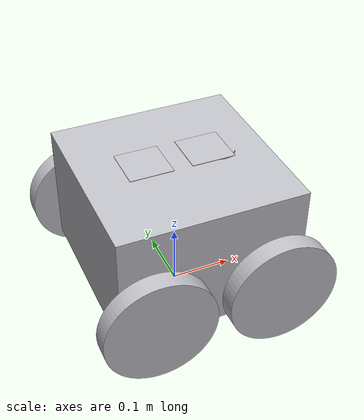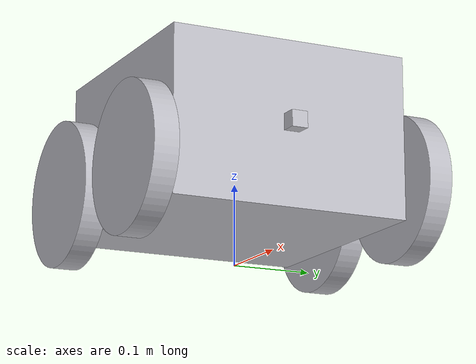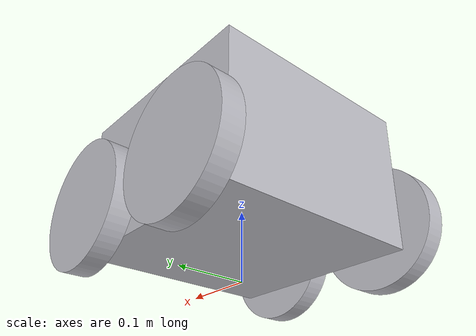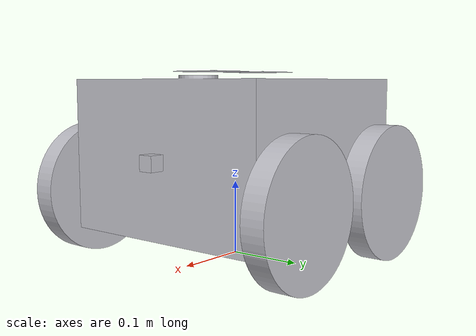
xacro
<?xml version="1.0" ?>
<robot name="rover" xmlns:xacro="http://www.ros.org/wiki/xacro">

<xacro:include filename="$(find rover_description)/urdf/materials.xacro" />
<xacro:include filename="$(find rover_description)/urdf/rover.trans" />

<xacro:include filename="$(find rover_description)/rover/plugins.gazebo" />
<xacro:include filename="$(find rover_description)/rover/physics.gazebo" />
<xacro:include filename="$(find rover_description)/rover/material.gazebo" />

<link name="base_link">
  <inertial>
    <origin xyz="4.085534884959772e-05 0.0 0.14002097241238062" rpy="0 0 0"/>
    <mass value="141.47571320410597"/>
    <inertia ixx="1.534192" iyy="1.533243" izz="2.123317" ixy="0.0" iyz="0.0" ixz="-0.000592"/>
  </inertial>
  <visual>
    <origin xyz="0 0 0" rpy="0 0 0"/>
    <geometry>
      <mesh filename="package://rover_description/meshes/base_link.stl" scale="0.001 0.001 0.001"/>
    </geometry>
    <material name="silver"/>
  </visual>
  <collision>
    <origin xyz="0 0 0" rpy="0 0 0"/>
    <geometry>
      <mesh filename="package://rover_description/meshes/base_link.stl" scale="0.001 0.001 0.001"/>
    </geometry>
  </collision>
</link>
<gazebo reference="base_link">
  <material>Gazebo/Red</material>
</gazebo>
<link name="white_link">
  <inertial>
    <origin xyz="0.0 -1.2847684393761896e-17 0.00500000000000006" rpy="0 0 0"/>
    <mass value="0.26048711836780625"/>
    <inertia ixx="7.1e-05" iyy="7.1e-05" izz="0.000138" ixy="-0.0" iyz="-0.0" ixz="0.0"/>
  </inertial>
  <visual>
    <origin xyz="-0.05 -0.0 0.25" rpy="0 0 0"/>
    <geometry>
      <box size = '0.07 0.07 0.001'/>
    </geometry>
    <material name="silver"/>
  </visual>
  <collision>
    <origin xyz="-0.05 -0.0 0.001" rpy="0 0 0"/>
    <geometry>
      <box size = '0.05 0.05 0.001'/>
    </geometry>
  </collision>
</link>

<gazebo reference="white_link">
  <material>Gazebo/White</material>
</gazebo>

<link name="black_link">
  <inertial>
    <origin xyz="0.0 -1.2847684393761896e-17 0.00500000000000006" rpy="0 0 0"/>
    <mass value="0.26048711836780625"/>
    <inertia ixx="7.1e-05" iyy="7.1e-05" izz="0.000138" ixy="-0.0" iyz="-0.0" ixz="0.0"/>
  </inertial>
  <visual>
    <origin xyz="0.05 -0.0 0.25" rpy="0 0 0"/>
    <geometry>
      <box size = '0.07 0.07 0.001'/>
    </geometry>
    <material name="silver"/>
  </visual>
  <collision>
    <origin xyz="-0.15 -0.0 0.001" rpy="0 0 0"/>
    <geometry>
      <box size = '0.05 0.05 0.001'/>
    </geometry>
  </collision>
</link>

<gazebo reference="black_link">
  <material>Gazebo/Black</material>
</gazebo>

<link name="camera_1">
  <inertial>
    <origin xyz="0.010000000000000009 0.0 0.0" rpy="0 0 0"/>
    <mass value="0.0628"/>
    <inertia ixx="4e-06" iyy="4e-06" izz="4e-06" ixy="0.0" iyz="0.0" ixz="0.0"/>
  </inertial>
  <visual>
    <origin xyz="-0.15 -0.0 -0.14" rpy="0 0 0"/>
    <geometry>
      <mesh filename="package://rover_description/meshes/camera_1.stl" scale="0.001 0.001 0.001"/>
    </geometry>
    <material name="silver"/>
  </visual>
  <collision>
    <origin xyz="-0.15 -0.0 -0.14" rpy="0 0 0"/>
    <geometry>
      <mesh filename="package://rover_description/meshes/camera_1.stl" scale="0.001 0.001 0.001"/>
    </geometry>
  </collision>
</link>

<link name="wheel_right_behind_1">
  <inertial>
    <origin xyz="4.163336342344337e-17 -0.014999999999999986 0.0" rpy="0 0 0"/>
    <mass value="5.992745066355209"/>
    <inertia ixx="0.012585" iyy="0.024271" izz="0.012585" ixy="-0.0" iyz="0.0" ixz="0.0"/>
  </inertial>
  <visual>
    <origin xyz="0.1 0.16 -0.09" rpy="0 0 0"/>
    <geometry>
      <mesh filename="package://rover_description/meshes/wheel_right_behind_1.stl" scale="0.001 0.001 0.001"/>
    </geometry>
    <material name="silver"/>
  </visual>
  <collision>
    <origin xyz="0.1 0.16 -0.09" rpy="0 0 0"/>
    <geometry>
      <mesh filename="package://rover_description/meshes/wheel_right_behind_1.stl" scale="0.001 0.001 0.001"/>
    </geometry>
  </collision>
</link>

<link name="wheel_left_behind_1">
  <inertial>
    <origin xyz="4.163336342344337e-17 0.014999999999999986 0.0" rpy="0 0 0"/>
    <mass value="5.992745066355209"/>
    <inertia ixx="0.012585" iyy="0.024271" izz="0.012585" ixy="0.0" iyz="-0.0" ixz="0.0"/>
  </inertial>
  <visual>
    <origin xyz="0.1 -0.16 -0.09" rpy="0 0 0"/>
    <geometry>
      <mesh filename="package://rover_description/meshes/wheel_left_behind_1.stl" scale="0.001 0.001 0.001"/>
    </geometry>
    <material name="silver"/>
  </visual>
  <collision>
    <origin xyz="0.1 -0.16 -0.09" rpy="0 0 0"/>
    <geometry>
      <mesh filename="package://rover_description/meshes/wheel_left_behind_1.stl" scale="0.001 0.001 0.001"/>
    </geometry>
  </collision>
</link>

<link name="wheel_right_front_1">
  <inertial>
    <origin xyz="2.7755575615628914e-17 -0.014999999999999986 0.0" rpy="0 0 0"/>
    <mass value="5.992745066355209"/>
    <inertia ixx="0.012585" iyy="0.024271" izz="0.012585" ixy="0.0" iyz="0.0" ixz="0.0"/>
  </inertial>
  <visual>
    <origin xyz="-0.1 0.16 -0.09" rpy="0 0 0"/>
    <geometry>
      <mesh filename="package://rover_description/meshes/wheel_right_front_1.stl" scale="0.001 0.001 0.001"/>
    </geometry>
    <material name="silver"/>
  </visual>
  <collision>
    <origin xyz="-0.1 0.16 -0.09" rpy="0 0 0"/>
    <geometry>
      <mesh filename="package://rover_description/meshes/wheel_right_front_1.stl" scale="0.001 0.001 0.001"/>
    </geometry>
  </collision>
</link>

<link name="wheel_left_front_1">
  <inertial>
    <origin xyz="2.7755575615628914e-17 0.014999999999999986 0.0" rpy="0 0 0"/>
    <mass value="5.992745066355209"/>
    <inertia ixx="0.012585" iyy="0.024271" izz="0.012585" ixy="0.0" iyz="-0.0" ixz="0.0"/>
  </inertial>
  <visual>
    <origin xyz="-0.1 -0.16 -0.09" rpy="0 0 0"/>
    <geometry>
      <mesh filename="package://rover_description/meshes/wheel_left_front_1.stl" scale="0.001 0.001 0.001"/>
    </geometry>
    <material name="silver"/>
  </visual>
  <collision>
    <origin xyz="-0.1 -0.16 -0.09" rpy="0 0 0"/>
    <geometry>
      <mesh filename="package://rover_description/meshes/wheel_left_front_1.stl" scale="0.001 0.001 0.001"/>
    </geometry>
  </collision>
</link>

<joint name="Rigid_white" type="fixed">
  <origin xyz="0 0.0 0" rpy="0 0 0"/>
  <parent link="base_link"/>
  <child link="white_link"/>
</joint>
<joint name="Rigid_black" type="fixed">
  <origin xyz="0.0 0.0 0" rpy="0 0 0"/>
  <parent link="base_link"/>
  <child link="black_link"/>
</joint>

<joint name="Rigid 2" type="fixed">
  <origin xyz="0.15 0.0 0.14" rpy="0 0 0"/>
  <parent link="base_link"/>
  <child link="camera_1"/>
</joint>

<joint name="Revolute 3" type="continuous">
  <origin xyz="-0.1 -0.16 0.09" rpy="0 0 0"/>
  <parent link="base_link"/>
  <child link="wheel_right_behind_1"/>
  <axis xyz="0.0 -1.0 0.0"/>
</joint>

<joint name="Revolute 4" type="continuous">
  <origin xyz="-0.1 0.16 0.09" rpy="0 0 0"/>
  <parent link="base_link"/>
  <child link="wheel_left_behind_1"/>
  <axis xyz="0.0 -1.0 0.0"/>
</joint>

<joint name="Revolute 5" type="continuous">
  <origin xyz="0.1 -0.16 0.09" rpy="0 0 0"/>
  <parent link="base_link"/>
  <child link="wheel_right_front_1"/>
  <axis xyz="0.0 -1.0 0.0"/>
</joint>

<joint name="Revolute 6" type="continuous">
  <origin xyz="0.1 0.16 0.09" rpy="0 0 0"/>
  <parent link="base_link"/>
  <child link="wheel_left_front_1"/>
  <axis xyz="0.0 -1.0 0.0"/>
</joint>

</robot>

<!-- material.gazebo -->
<robot name="rover" xmlns:xacro="http://www.ros.org/wiki/xacro" >

<xacro:property name="body_color" value="Gazebo/Black" />
<xacro:property name="wheel_color" value="Gazebo/Red" />
<xacro:property name="camera_color" value="Gazebo/Silver" />
<xacro:property name="lidar_color" value="Gazebo/Green" />

<gazebo reference="base_link">
  <material>${body_color}</material>

</gazebo>

<gazebo reference="lidar_1">
  <material>${lidar_color}</material>

</gazebo>

<gazebo reference="camera_1">
  <material>${camera_color}</material>

</gazebo>

<gazebo reference="wheel_right_behind_1">
  <material>${wheel_color}</material>

</gazebo>

<gazebo reference="wheel_left_behind_1">
  <material>${wheel_color}</material>

</gazebo>

<gazebo reference="wheel_right_front_1">
  <material>${wheel_color}</material>

</gazebo>

<gazebo reference="wheel_left_front_1">
  <material>${wheel_color}</material>

</gazebo>

</robot>
